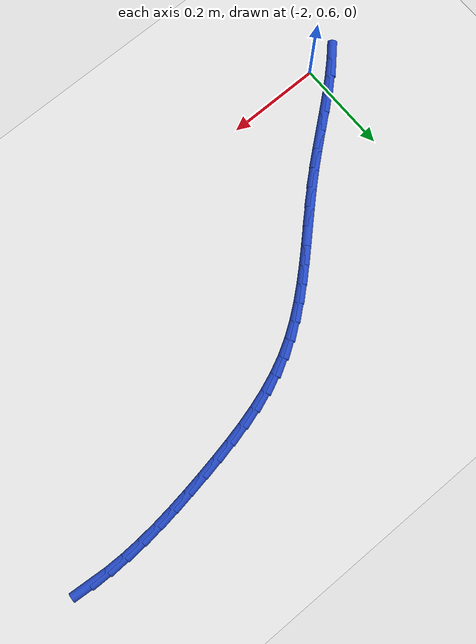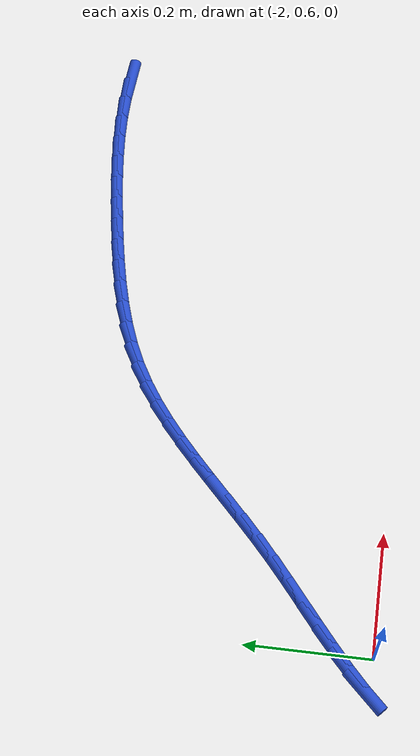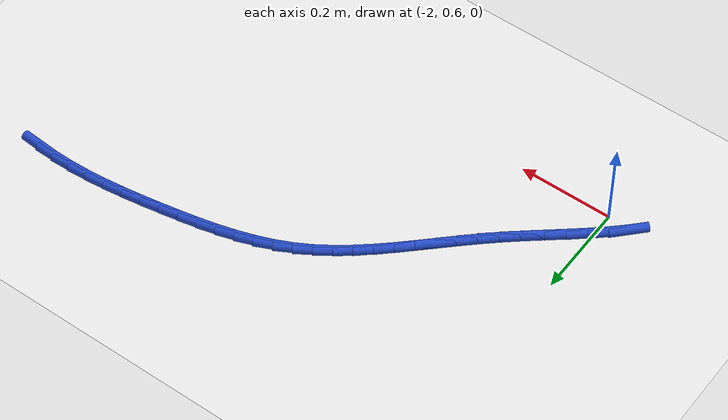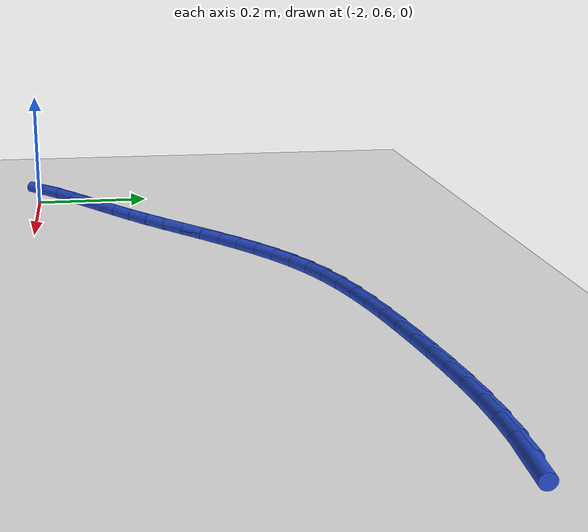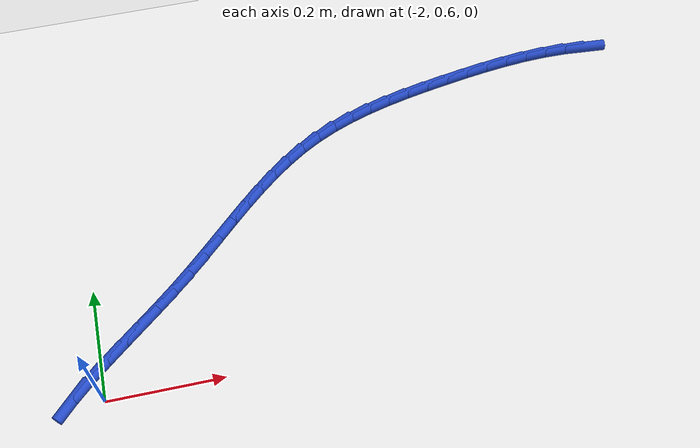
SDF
<sdf version="1.6">
 <world name="default">
  <model name="ground_plane">
   <static>1</static>
   <link name="link">
    <collision name="collision">
     <geometry><plane><normal>0 0 1</normal><size>100 100</size></plane></geometry>
     <surface><friction><ode><mu>100</mu><mu2>50</mu2></ode></friction></surface>
    </collision>
    <visual name="visual">
     <cast_shadows>0</cast_shadows>
     <geometry><plane><normal>0 0 1</normal><size>100 100</size></plane></geometry>
     <material>
      <script><uri>file://media/materials/scripts/gazebo.material</uri><name>Gazebo/WhiteGlow</name></script>
     </material>
    </visual>
   </link>
  </model>
  <model name="line">
   <link name="link_43">
    <pose>-1.0153609077943728 1.117740034727116 0.01 0 1.57 -0.07617037986373879</pose>
    <collision name="collision">
     <geometry><cylinder><radius>0.01</radius><length>0.08</length></cylinder></geometry>
    </collision>
    <visual name="visual">
     <material>
      <script><name>Gazebo/Blue</name><uri>file://media/materials/scripts/gazebo.material</uri></script>
     </material>
     <geometry><cylinder><radius>0.01</radius><length>0.08</length></cylinder></geometry>
    </visual>
   </link>
   <link name="link_44">
    <pose>-1.054562989093351 1.120731860508417 0.01 0 1.57 -0.012870144877667853</pose>
    <collision name="collision">
     <geometry><cylinder><radius>0.01</radius><length>0.08</length></cylinder></geometry>
    </collision>
    <visual name="visual">
     <material>
      <script><name>Gazebo/Blue</name><uri>file://media/materials/scripts/gazebo.material</uri></script>
     </material>
     <geometry><cylinder><radius>0.01</radius><length>0.08</length></cylinder></geometry>
    </visual>
   </link>
   <link name="link_45">
    <pose>-1.0945451649391567 1.1212464653175456 0.01 0 1.57 0.03995630046324833</pose>
    <collision name="collision">
     <geometry><cylinder><radius>0.01</radius><length>0.08</length></cylinder></geometry>
    </collision>
    <visual name="visual">
     <material>
      <script><name>Gazebo/Blue</name><uri>file://media/materials/scripts/gazebo.material</uri></script>
     </material>
     <geometry><cylinder><radius>0.01</radius><length>0.08</length></cylinder></geometry>
    </visual>
   </link>
   <link name="link_46">
    <pose>-1.1351020926741977 1.119625097594178 0.01 0 1.57 0.08327623793226487</pose>
    <collision name="collision">
     <geometry><cylinder><radius>0.01</radius><length>0.08</length></cylinder></geometry>
    </collision>
    <visual name="visual">
     <material>
      <script><name>Gazebo/Blue</name><uri>file://media/materials/scripts/gazebo.material</uri></script>
     </material>
     <geometry><cylinder><radius>0.01</radius><length>0.08</length></cylinder></geometry>
    </visual>
   </link>
   <link name="link_47">
    <pose>-1.1760284296408814 1.1162090057779916 0.01 0 1.57 0.11795846947127982</pose>
    <collision name="collision">
     <geometry><cylinder><radius>0.01</radius><length>0.08</length></cylinder></geometry>
    </collision>
    <visual name="visual">
     <material>
      <script><name>Gazebo/Blue</name><uri>file://media/materials/scripts/gazebo.material</uri></script>
     </material>
     <geometry><cylinder><radius>0.01</radius><length>0.08</length></cylinder></geometry>
    </visual>
   </link>
   <link name="link_48">
    <pose>-1.2171188331816152 1.1113394383086634 0.01 0 1.57 0.14470428627917575</pose>
    <collision name="collision">
     <geometry><cylinder><radius>0.01</radius><length>0.08</length></cylinder></geometry>
    </collision>
    <visual name="visual">
     <material>
      <script><name>Gazebo/Blue</name><uri>file://media/materials/scripts/gazebo.material</uri></script>
     </material>
     <geometry><cylinder><radius>0.01</radius><length>0.08</length></cylinder></geometry>
    </visual>
   </link>
   <link name="link_49">
    <pose>-1.2581679606388074 1.105357643625871 0.01 0 1.57 0.16401233236463345</pose>
    <collision name="collision">
     <geometry><cylinder><radius>0.01</radius><length>0.08</length></cylinder></geometry>
    </collision>
    <visual name="visual">
     <material>
      <script><name>Gazebo/Blue</name><uri>file://media/materials/scripts/gazebo.material</uri></script>
     </material>
     <geometry><cylinder><radius>0.01</radius><length>0.08</length></cylinder></geometry>
    </visual>
   </link>
   <link name="link_50">
    <pose>-1.2989704693548645 1.098604870169291 0.01 0 1.57 0.17802899333277394</pose>
    <collision name="collision">
     <geometry><cylinder><radius>0.01</radius><length>0.08</length></cylinder></geometry>
    </collision>
    <visual name="visual">
     <material>
      <script><name>Gazebo/Blue</name><uri>file://media/materials/scripts/gazebo.material</uri></script>
     </material>
     <geometry><cylinder><radius>0.01</radius><length>0.08</length></cylinder></geometry>
    </visual>
   </link>
   <link name="link_51">
    <pose>-1.3393264413347388 1.0913434593508782 0.01 0 1.57 0.19718736685031807</pose>
    <collision name="collision">
     <geometry><cylinder><radius>0.01</radius><length>0.08</length></cylinder></geometry>
    </collision>
    <visual name="visual">
     <material>
      <script><name>Gazebo/Blue</name><uri>file://media/materials/scripts/gazebo.material</uri></script>
     </material>
     <geometry><cylinder><radius>0.01</radius><length>0.08</length></cylinder></geometry>
    </visual>
   </link>
   <link name="link_52">
    <pose>-1.379065624922745 1.0834042266317674 0.01 0 1.57 0.22537833955243236</pose>
    <collision name="collision">
     <geometry><cylinder><radius>0.01</radius><length>0.08</length></cylinder></geometry>
    </collision>
    <visual name="visual">
     <material>
      <script><name>Gazebo/Blue</name><uri>file://media/materials/scripts/gazebo.material</uri></script>
     </material>
     <geometry><cylinder><radius>0.01</radius><length>0.08</length></cylinder></geometry>
    </visual>
   </link>
   <link name="link_53">
    <pose>-1.4180278586046946 1.0744712164862766 0.01 0 1.57 0.2631254187880046</pose>
    <collision name="collision">
     <geometry><cylinder><radius>0.01</radius><length>0.08</length></cylinder></geometry>
    </collision>
    <visual name="visual">
     <material>
      <script><name>Gazebo/Blue</name><uri>file://media/materials/scripts/gazebo.material</uri></script>
     </material>
     <geometry><cylinder><radius>0.01</radius><length>0.08</length></cylinder></geometry>
    </visual>
   </link>
   <link name="link_54">
    <pose>-1.4560529892442529 1.0642283515246327 0.01 0 1.57 0.3109767610904056</pose>
    <collision name="collision">
     <geometry><cylinder><radius>0.01</radius><length>0.08</length></cylinder></geometry>
    </collision>
    <visual name="visual">
     <material>
      <script><name>Gazebo/Blue</name><uri>file://media/materials/scripts/gazebo.material</uri></script>
     </material>
     <geometry><cylinder><radius>0.01</radius><length>0.08</length></cylinder></geometry>
    </visual>
   </link>
   <link name="link_55">
    <pose>-1.4929808637050854 1.052359554357063 0.01 0 1.57 0.36940398950234254</pose>
    <collision name="collision">
     <geometry><cylinder><radius>0.01</radius><length>0.08</length></cylinder></geometry>
    </collision>
    <visual name="visual">
     <material>
      <script><name>Gazebo/Blue</name><uri>file://media/materials/scripts/gazebo.material</uri></script>
     </material>
     <geometry><cylinder><radius>0.01</radius><length>0.08</length></cylinder></geometry>
    </visual>
   </link>
   <link name="link_56">
    <pose>-1.5286513288508574 1.0385487475937936 0.01 0 1.57 0.43864397998230575</pose>
    <collision name="collision">
     <geometry><cylinder><radius>0.01</radius><length>0.08</length></cylinder></geometry>
    </collision>
    <visual name="visual">
     <material>
      <script><name>Gazebo/Blue</name><uri>file://media/materials/scripts/gazebo.material</uri></script>
     </material>
     <geometry><cylinder><radius>0.01</radius><length>0.08</length></cylinder></geometry>
    </visual>
   </link>
   <link name="link_57">
    <pose>-1.5629042315452353 1.0224798538450526 0.01 0 1.57 0.5167463792292899</pose>
    <collision name="collision">
     <geometry><cylinder><radius>0.01</radius><length>0.08</length></cylinder></geometry>
    </collision>
    <visual name="visual">
     <material>
      <script><name>Gazebo/Blue</name><uri>file://media/materials/scripts/gazebo.material</uri></script>
     </material>
     <geometry><cylinder><radius>0.01</radius><length>0.08</length></cylinder></geometry>
    </visual>
   </link>
   <link name="link_58">
    <pose>-1.5956164377119544 1.0038911556902537 0.01 0 1.57 0.5896048283809276</pose>
    <collision name="collision">
     <geometry><cylinder><radius>0.01</radius><length>0.08</length></cylinder></geometry>
    </collision>
    <visual name="visual">
     <material>
      <script><name>Gazebo/Blue</name><uri>file://media/materials/scripts/gazebo.material</uri></script>
     </material>
     <geometry><cylinder><radius>0.01</radius><length>0.08</length></cylinder></geometry>
    </visual>
   </link>
   <link name="link_59">
    <pose>-1.626945231402158 0.9829327106360024 0.01 0 1.57 0.6501632352882499</pose>
    <collision name="collision">
     <geometry><cylinder><radius>0.01</radius><length>0.08</length></cylinder></geometry>
    </collision>
    <visual name="visual">
     <material>
      <script><name>Gazebo/Blue</name><uri>file://media/materials/scripts/gazebo.material</uri></script>
     </material>
     <geometry><cylinder><radius>0.01</radius><length>0.08</length></cylinder></geometry>
    </visual>
   </link>
   <link name="link_60">
    <pose>-1.6571763017732026 0.9599431303446265 0.01 0 1.57 0.6980332330648967</pose>
    <collision name="collision">
     <geometry><cylinder><radius>0.01</radius><length>0.08</length></cylinder></geometry>
    </collision>
    <visual name="visual">
     <material>
      <script><name>Gazebo/Blue</name><uri>file://media/materials/scripts/gazebo.material</uri></script>
     </material>
     <geometry><cylinder><radius>0.01</radius><length>0.08</length></cylinder></geometry>
    </visual>
   </link>
   <link name="link_61">
    <pose>-1.6865960043152728 0.935262004942843 0.01 0 1.57 0.7333475334357399</pose>
    <collision name="collision">
     <geometry><cylinder><radius>0.01</radius><length>0.08</length></cylinder></geometry>
    </collision>
    <visual name="visual">
     <material>
      <script><name>Gazebo/Blue</name><uri>file://media/materials/scripts/gazebo.material</uri></script>
     </material>
     <geometry><cylinder><radius>0.01</radius><length>0.08</length></cylinder></geometry>
    </visual>
   </link>
   <link name="link_62">
    <pose>-1.7154906945185526 0.9092289245573677 0.01 0 1.57 0.7564915790419889</pose>
    <collision name="collision">
     <geometry><cylinder><radius>0.01</radius><length>0.08</length></cylinder></geometry>
    </collision>
    <visual name="visual">
     <material>
      <script><name>Gazebo/Blue</name><uri>file://media/materials/scripts/gazebo.material</uri></script>
     </material>
     <geometry><cylinder><radius>0.01</radius><length>0.08</length></cylinder></geometry>
    </visual>
   </link>
   <link name="link_63">
    <pose>-1.7441467278732268 0.882183479314916 0.01 0 1.57 0.7679331203728142</pose>
    <collision name="collision">
     <geometry><cylinder><radius>0.01</radius><length>0.08</length></cylinder></geometry>
    </collision>
    <visual name="visual">
     <material>
      <script><name>Gazebo/Blue</name><uri>file://media/materials/scripts/gazebo.material</uri></script>
     </material>
     <geometry><cylinder><radius>0.01</radius><length>0.08</length></cylinder></geometry>
    </visual>
   </link>
   <link name="link_64">
    <pose>-1.7728504598694785 0.8544652593422049 0.01 0 1.57 0.7681219784722797</pose>
    <collision name="collision">
     <geometry><cylinder><radius>0.01</radius><length>0.08</length></cylinder></geometry>
    </collision>
    <visual name="visual">
     <material>
      <script><name>Gazebo/Blue</name><uri>file://media/materials/scripts/gazebo.material</uri></script>
     </material>
     <geometry><cylinder><radius>0.01</radius><length>0.08</length></cylinder></geometry>
    </visual>
   </link>
   <link name="link_65">
    <pose>-1.8018882459974925 0.8264138547659501 0.01 0 1.57 0.7574486431471186</pose>
    <collision name="collision">
     <geometry><cylinder><radius>0.01</radius><length>0.08</length></cylinder></geometry>
    </collision>
    <visual name="visual">
     <material>
      <script><name>Gazebo/Blue</name><uri>file://media/materials/scripts/gazebo.material</uri></script>
     </material>
     <geometry><cylinder><radius>0.01</radius><length>0.08</length></cylinder></geometry>
    </visual>
   </link>
   <link name="link_66">
    <pose>-1.8315464417474532 0.7983688557128671 0.01 0 1.57 0.7362486674125462</pose>
    <collision name="collision">
     <geometry><cylinder><radius>0.01</radius><length>0.08</length></cylinder></geometry>
    </collision>
    <visual name="visual">
     <material>
      <script><name>Gazebo/Blue</name><uri>file://media/materials/scripts/gazebo.material</uri></script>
     </material>
     <geometry><cylinder><radius>0.01</radius><length>0.08</length></cylinder></geometry>
    </visual>
   </link>
   <link name="link_67">
    <pose>-1.8621113997027163 0.770669850297756 0.01 0 1.57 0.7091499063562902</pose>
    <collision name="collision">
     <geometry><cylinder><radius>0.01</radius><length>0.08</length></cylinder></geometry>
    </collision>
    <visual name="visual">
     <material>
      <script><name>Gazebo/Blue</name><uri>file://media/materials/scripts/gazebo.material</uri></script>
     </material>
     <geometry><cylinder><radius>0.01</radius><length>0.08</length></cylinder></geometry>
    </visual>
   </link>
   <link name="link_68">
    <pose>-1.893716818684979 0.7435507696492514 0.01 0 1.57 0.6919262115949663</pose>
    <collision name="collision">
     <geometry><cylinder><radius>0.01</radius><length>0.08</length></cylinder></geometry>
    </collision>
    <visual name="visual">
     <material>
      <script><name>Gazebo/Blue</name><uri>file://media/materials/scripts/gazebo.material</uri></script>
     </material>
     <geometry><cylinder><radius>0.01</radius><length>0.08</length></cylinder></geometry>
    </visual>
   </link>
   <link name="link_69">
    <pose>-1.9259339877117918 0.7168562814788961 0.01 0 1.57 0.687796336801377</pose>
    <collision name="collision">
     <geometry><cylinder><radius>0.01</radius><length>0.08</length></cylinder></geometry>
    </collision>
    <visual name="visual">
     <material>
      <script><name>Gazebo/Blue</name><uri>file://media/materials/scripts/gazebo.material</uri></script>
     </material>
     <geometry><cylinder><radius>0.01</radius><length>0.08</length></cylinder></geometry>
    </visual>
   </link>
   <link name="link_70">
    <pose>-1.9582047070886526 0.690341429849861 0.01 0 1.57 0.6967496535942904</pose>
    <collision name="collision">
     <geometry><cylinder><radius>0.01</radius><length>0.08</length></cylinder></geometry>
    </collision>
    <visual name="visual">
     <material>
      <script><name>Gazebo/Blue</name><uri>file://media/materials/scripts/gazebo.material</uri></script>
     </material>
     <geometry><cylinder><radius>0.01</radius><length>0.08</length></cylinder></geometry>
    </visual>
   </link>
   <link name="link_71">
    <pose>-1.989970777121061 0.6637612588253171 0.01 0 1.57 0.7192933389468747</pose>
    <collision name="collision">
     <geometry><cylinder><radius>0.01</radius><length>0.08</length></cylinder></geometry>
    </collision>
    <visual name="visual">
     <material>
      <script><name>Gazebo/Blue</name><uri>file://media/materials/scripts/gazebo.material</uri></script>
     </material>
     <geometry><cylinder><radius>0.01</radius><length>0.08</length></cylinder></geometry>
    </visual>
   </link>
   <link name="link_72">
    <pose>-2.020673998114516 0.636870812468436 0.01 0 1.57 0.7564560105271473</pose>
    <collision name="collision">
     <geometry><cylinder><radius>0.01</radius><length>0.08</length></cylinder></geometry>
    </collision>
    <visual name="visual">
     <material>
      <script><name>Gazebo/Blue</name><uri>file://media/materials/scripts/gazebo.material</uri></script>
     </material>
     <geometry><cylinder><radius>0.01</radius><length>0.08</length></cylinder></geometry>
    </visual>
   </link>
   <link name="link_73">
    <pose>-2.0497561703745157 0.6094251348423881 0.01 0 1.57 0.8097445847798642</pose>
    <collision name="collision">
     <geometry><cylinder><radius>0.01</radius><length>0.08</length></cylinder></geometry>
    </collision>
    <visual name="visual">
     <material>
      <script><name>Gazebo/Blue</name><uri>file://media/materials/scripts/gazebo.material</uri></script>
     </material>
     <geometry><cylinder><radius>0.01</radius><length>0.08</length></cylinder></geometry>
    </visual>
   </link>
  </model>
 </world>
</sdf>
